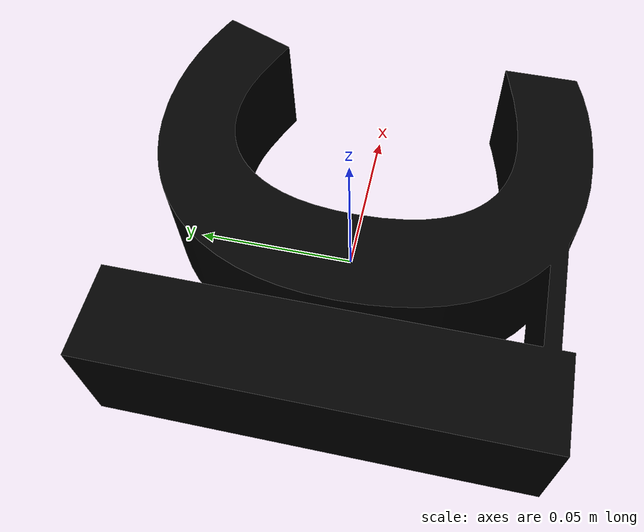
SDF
<?xml version="1.0"?>
<sdf version="1.7">
<!-- This SDF was autogenerated by controller_sdf_generation.py -->
  <model name="anything">
    <link name="smaller_ic">
      <inertial>
        <pose>0 0 0 0 0 0</pose>
        <mass>1</mass>
        <inertia>
            <ixx>0.003</ixx>
            <iyy>0.003 </iyy>
            <izz>0.006 </izz>
            <ixy>0.0</ixy>
            <ixz>0.0</ixz>
            <iyz>0.0</iyz>
        </inertia>
      </inertial>
      <visual name="smaller_ic">
        <pose>0 0 0 0 0 0</pose>
        <geometry>
          <mesh>
            <uri>smaller_ic.obj</uri>
          </mesh>
        </geometry>
        <material>
          <diffuse>0 0 0 1</diffuse>
        </material>
      </visual>
      <collision name="smaller_ic_volume">
        <pose>0 0 0 0 0 0</pose>
            <geometry>
          <mesh>
            <uri>smaller_ic.obj</uri>
          </mesh>
        </geometry>
        <drake:proximity_properties>
          <drake:compliant_hydroelastic/>
          <drake:hydroelastic_modulus> 3.0e7 </drake:hydroelastic_modulus>
          <drake:mesh_resolution_hint> 0.18 </drake:mesh_resolution_hint>
          <drake:hunt_crossley_dissipation>10</drake:hunt_crossley_dissipation>
          <drake:mu_dynamic>0.3</drake:mu_dynamic>
        </drake:proximity_properties>
      </collision>
      <collision name="corner_nxynz">
        <geometry>
          <sphere>
            <radius>0.001</radius>
          </sphere>
        </geometry>
        <drake:proximity_properties>
        <drake:mu_dynamic>0.3</drake:mu_dynamic>
        </drake:proximity_properties>
        <pose> -0.05680880 0.07134910 -0.02000000 0 0 0</pose>
      </collision>
      <collision name="corner_nxnynz">
        <geometry>
          <sphere>
            <radius>0.001</radius>
          </sphere>
        </geometry>
        <drake:proximity_properties>
        <drake:mu_dynamic>0.3</drake:mu_dynamic>
        </drake:proximity_properties>
        <pose> -0.05680880 -0.07135490 -0.02000000 0 0 0</pose>
      </collision>
      <collision name="corner_xynz">
        <geometry>
          <sphere>
            <radius>0.001</radius>
          </sphere>
        </geometry>
        <drake:proximity_properties>
        <drake:mu_dynamic>0.3</drake:mu_dynamic>
        </drake:proximity_properties>
        <pose> 0.08086900 -0.00000290 -0.02000000 0 0 0</pose>
      </collision>

    </link>
  </model>
</sdf>
